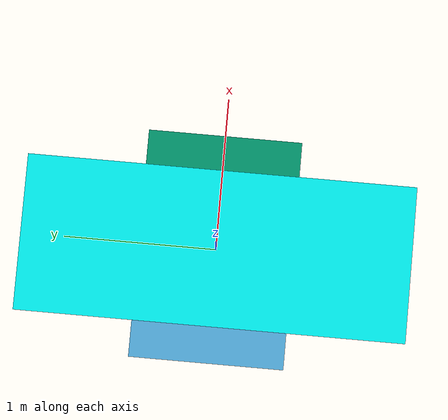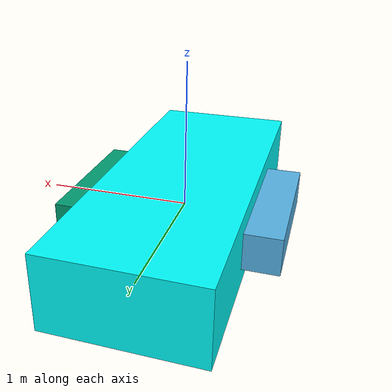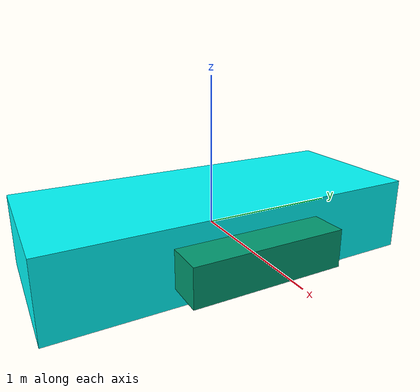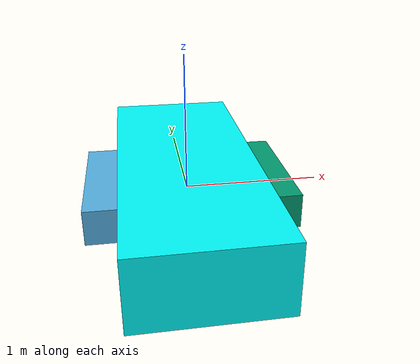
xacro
<?xml version="1.0"?>
<robot name="RHexBot" xmlns:xacro="http://ros.org/wiki/xacro">

  <link name="base_link">
        <visual>
            <origin xyz="0 0 0" rpy="0 0 0" />
            <geometry>
                <box size="1 2.5 0.5" />
            </geometry>
            <material name="Cyan">
                <color rgba="0 1.0 1.0 1.0" />
            </material>
        </visual>
        <collision>
            <geometry>
                <box size="1 2.5 0.5" />
            </geometry>
        </collision>
        <inertial>
            <mass value="10"/>
            <inertia ixx="1.0" ixy="0.0" ixz="0.0" iyy="1.0" iyz="0.0" izz="1.0"/>
        </inertial>
    </link>

    <link name="leg_fl">
        <visual>
            <origin xyz="0 0 0" rpy="0 0 0" />
            <geometry>
                <box size="0.25 1 0.25" />
            </geometry>
        </visual>
        <collision>
            <geometry>
                <box size="0.25 1 0.25" />
            </geometry>
        </collision>
        <inertial>
            <mass value="1"/>
            <inertia ixx="1.0" ixy="0.0" ixz="0.0" iyy="1.0" iyz="0.0" izz="1.0"/>
        </inertial>
    </link>

    <link name="leg_fr">
        <visual>
            <origin xyz="0 0 0" rpy="0 0 0" />
            <geometry>
                <box size="0.25 1 0.25" />
            </geometry>
        </visual>
        <collision>
            <geometry>
                <box size="0.25 1 0.25" />
            </geometry>
        </collision>
        <inertial>
            <mass value="1"/>
            <inertia ixx="1.0" ixy="0.0" ixz="0.0" iyy="1.0" iyz="0.0" izz="1.0"/>
        </inertial>
    </link>

    <joint name="body_to_leg_fl" type="continuous">
        <axis rpy="0 0 0" xyz="1 0 0"/>
        <parent link="base_link" />
        <child link="leg_fl" />
        <origin xyz="-0.6125 0 0"/>
    </joint>

    <joint name="body_to_leg_fr" type="continuous">
        <axis rpy="0 0 0" xyz="1 0 0"/>
        <parent link="base_link" />
        <child link="leg_fr" />
        <origin xyz="0.6125 0 0"/>
    </joint>

</robot>
